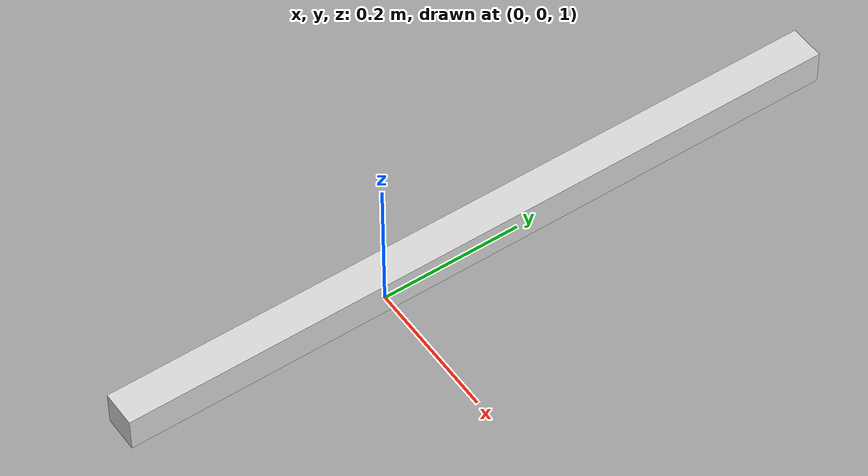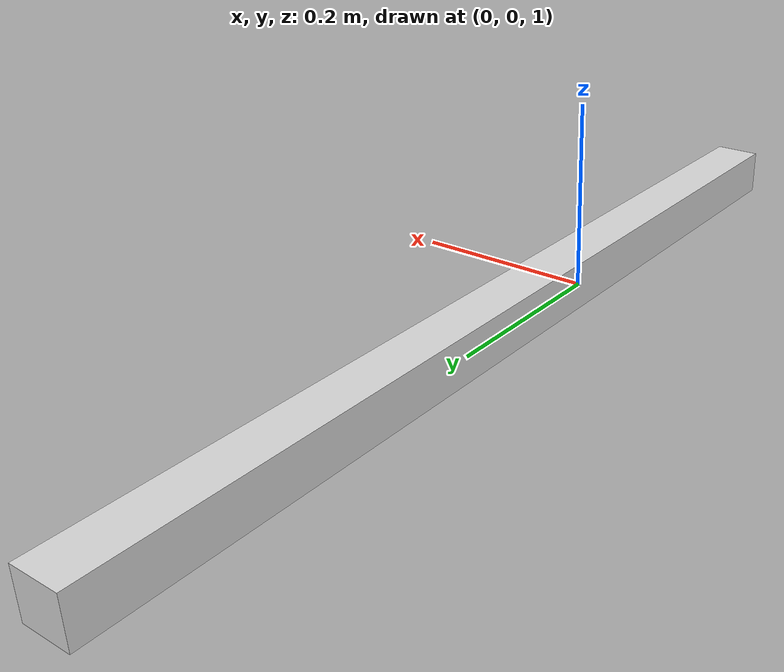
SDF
<?xml version="1.0" ?>
<!-- tmp sdf file generated from LISDF -->
<sdf version="1.9">
  <world name="tmp_world">

<model name="counter_back#1">
  <static>True</static>
  <pose>-0.006000000052154064 0.14100000262260437 1.024999976158142 0.0 -0.0 0.0</pose>
  <link name="box">

    <inertial>
      <mass>0</mass>
      <pose>0.0 0.0 0.0 0.0 -0.0 0.0</pose>
      <inertia>
        <ixx>0</ixx>
        <ixy>0</ixy>
        <ixz>0</ixz>
        <iyy>0</iyy>
        <iyz>0</iyz>
        <izz>0</izz>
      </inertia>
    </inertial>
    <collision name="box_collision">>
      <pose>0.0 0.0 0.0 0.0 -0.0 0.0</pose>
      <geometry>
        <box>
          <size>0.050999999046325684 1.0449999570846558 0.05000000074505806</size>
        </box>
      </geometry>

    </collision>
    <visual name="box_visual">
      <pose>0.0 0.0 0.0 0.0 -0.0 0.0</pose>
      <geometry>
        <box>
          <size>0.050999999046325684 1.0449999570846558 0.05000000074505806</size>
        </box>
      </geometry>
      <material>
        <ambient>1.0 1.0 1.0 1.0</ambient>
        <diffuse>0.8500000238418579 0.8500000238418579 0.8500000238418579 1.0</diffuse>
        <specular>0.0 0.0 0.0 1.0</specular>
        <emissive>0.0 0.0 0.0 1.0</emissive>
      </material>
      <cast_shadows>True</cast_shadows>
    </visual>
    <self_collide>True</self_collide>
  </link>

</model>

  </world>
</sdf>
